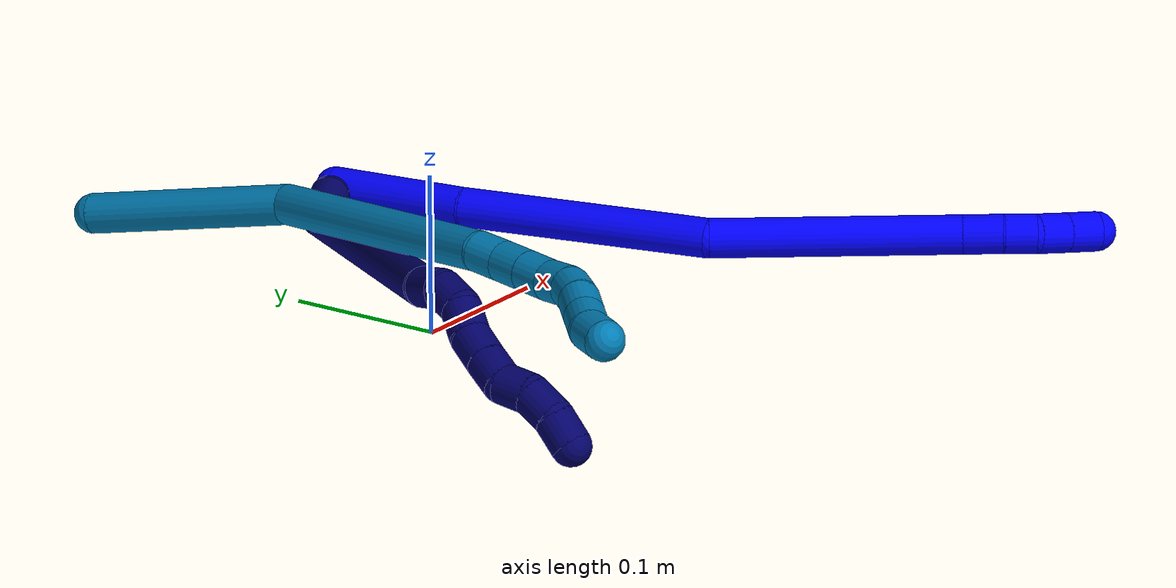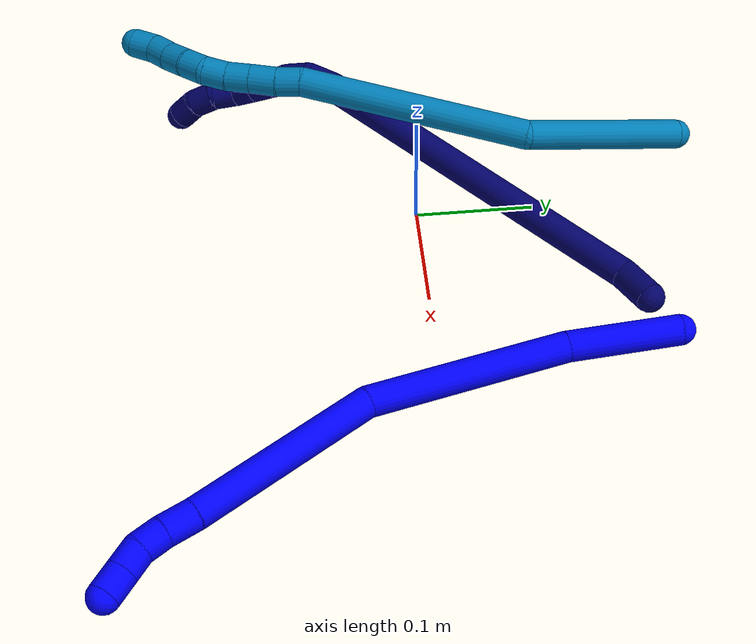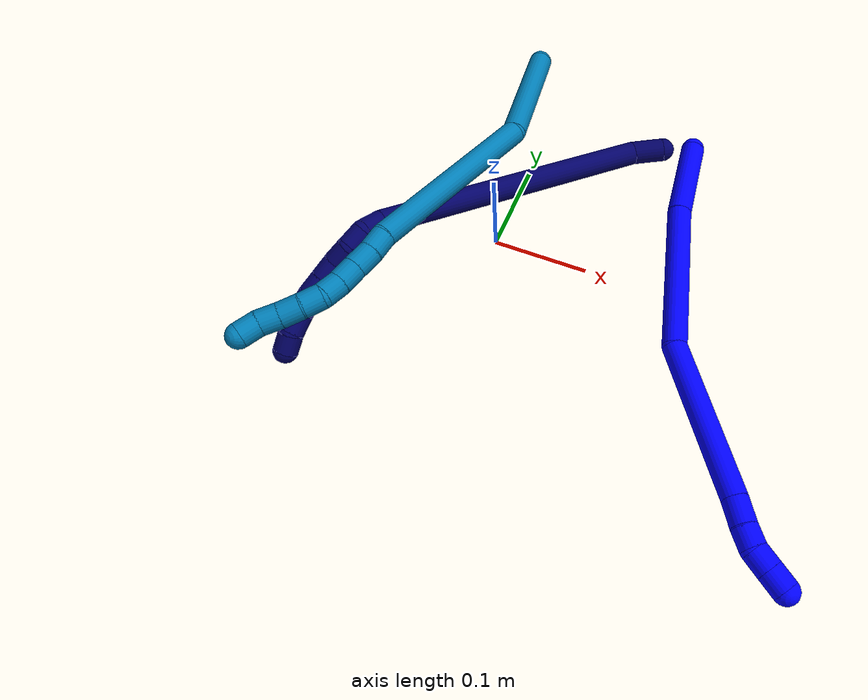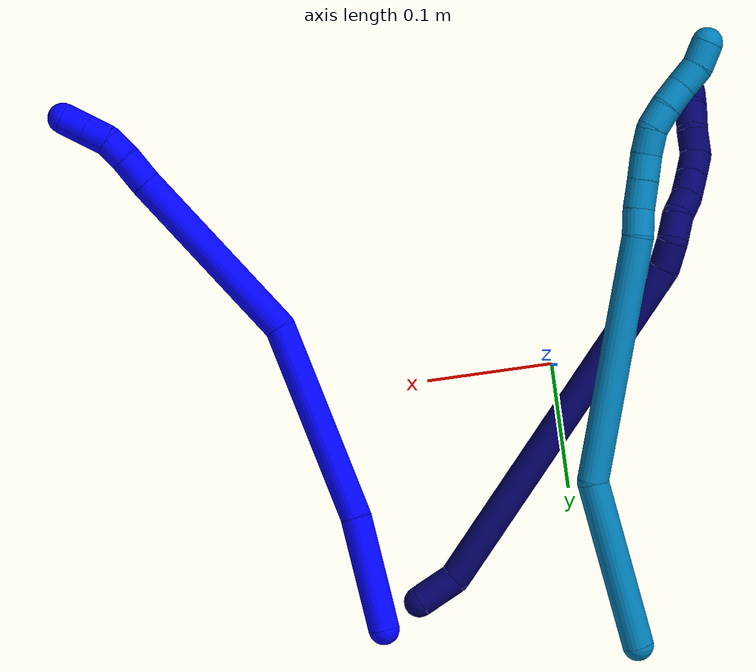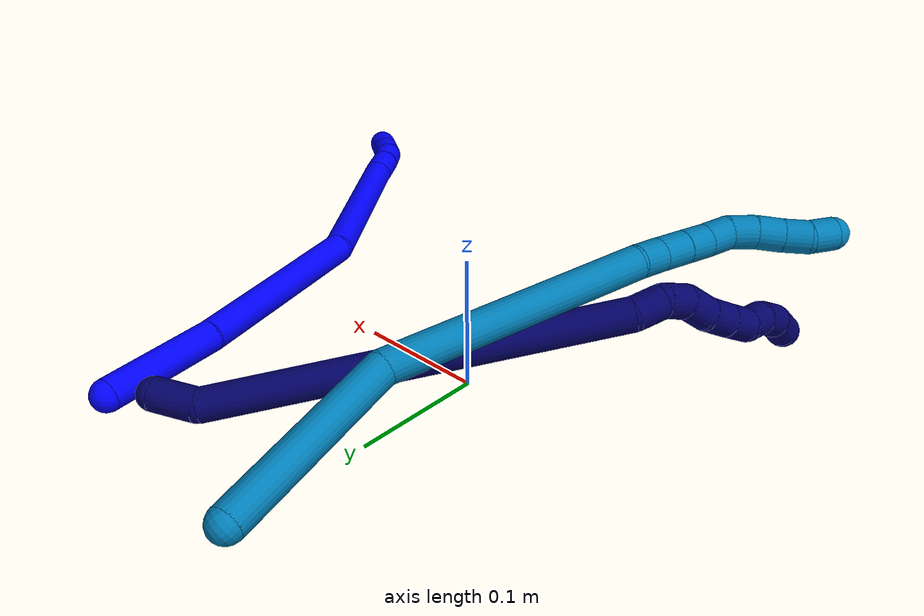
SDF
<sdf version="1.7">
 <world name="default">
  <model name="1">
   <static>0</static>
   <link name="1">
    <collision name="collision-cylinder-e_1_1_4">
     <pose>0.013761 -0.033315 0.029308 0.849297 0.300728 0.136798</pose>
     <geometry><cylinder><radius>0.0125</radius><length>0.092913</length></cylinder></geometry>
     <surface>
      <friction><ode><mu>1.16</mu><mu2>1.16</mu2><slip1>0</slip1><slip2>0</slip2></ode></friction>
      <contact><ode><kp>1e+06</kp><kd>1</kd><max_vel>0</max_vel><min_depth>0.001</min_depth></ode></contact>
     </surface>
    </collision>
    <visual name="visual-cylinder-e_1_1_4">
     <pose>0.013761 -0.033315 0.029308 0.849297 0.300728 0.136798</pose>
     <geometry><cylinder><radius>0.0125</radius><length>0.092913</length></cylinder></geometry>
     <material><ambient>0 0 1 1</ambient></material>
    </visual>
    <collision name="collision-cylinder-e_2_4_5">
     <pose>0.058813 -0.117606 0.114356 0.740785 0.392737 0.154191</pose>
     <geometry><cylinder><radius>0.0125</radius><length>0.163519</length></cylinder></geometry>
     <surface>
      <friction><ode><mu>1.16</mu><mu2>1.16</mu2><slip1>0</slip1><slip2>0</slip2></ode></friction>
      <contact><ode><kp>1e+06</kp><kd>1</kd><max_vel>0</max_vel><min_depth>0.001</min_depth></ode></contact>
     </surface>
    </collision>
    <visual name="visual-cylinder-e_2_4_5">
     <pose>0.058813 -0.117606 0.114356 0.740785 0.392737 0.154191</pose>
     <geometry><cylinder><radius>0.0125</radius><length>0.163519</length></cylinder></geometry>
     <material><ambient>0 0 1 1</ambient></material>
    </visual>
    <collision name="collision-cylinder-e_3_5_6">
     <pose>0.131842 -0.192563 0.23232 0.367858 0.559235 0.106733</pose>
     <geometry><cylinder><radius>0.0125</radius><length>0.157341</length></cylinder></geometry>
     <surface>
      <friction><ode><mu>1.16</mu><mu2>1.16</mu2><slip1>0</slip1><slip2>0</slip2></ode></friction>
      <contact><ode><kp>1e+06</kp><kd>1</kd><max_vel>0</max_vel><min_depth>0.001</min_depth></ode></contact>
     </surface>
    </collision>
    <visual name="visual-cylinder-e_3_5_6">
     <pose>0.131842 -0.192563 0.23232 0.367858 0.559235 0.106733</pose>
     <geometry><cylinder><radius>0.0125</radius><length>0.157341</length></cylinder></geometry>
     <material><ambient>0 0 1 1</ambient></material>
    </visual>
    <collision name="collision-cylinder-e_4_6_7">
     <pose>0.179793 -0.221125 0.304692 0.424069 0.509073 0.111901</pose>
     <geometry><cylinder><radius>0.0125</radius><length>0.025499</length></cylinder></geometry>
     <surface>
      <friction><ode><mu>1.16</mu><mu2>1.16</mu2><slip1>0</slip1><slip2>0</slip2></ode></friction>
      <contact><ode><kp>1e+06</kp><kd>1</kd><max_vel>0</max_vel><min_depth>0.001</min_depth></ode></contact>
     </surface>
    </collision>
    <visual name="visual-cylinder-e_4_6_7">
     <pose>0.179793 -0.221125 0.304692 0.424069 0.509073 0.111901</pose>
     <geometry><cylinder><radius>0.0125</radius><length>0.025499</length></cylinder></geometry>
     <material><ambient>0 0 1 1</ambient></material>
    </visual>
    <collision name="collision-cylinder-e_5_7_8">
     <pose>0.191664 -0.228524 0.322684 0.344812 0.596242 0.106914</pose>
     <geometry><cylinder><radius>0.0125</radius><length>0.020148</length></cylinder></geometry>
     <surface>
      <friction><ode><mu>1.16</mu><mu2>1.16</mu2><slip1>0</slip1><slip2>0</slip2></ode></friction>
      <contact><ode><kp>1e+06</kp><kd>1</kd><max_vel>0</max_vel><min_depth>0.001</min_depth></ode></contact>
     </surface>
    </collision>
    <visual name="visual-cylinder-e_5_7_8">
     <pose>0.191664 -0.228524 0.322684 0.344812 0.596242 0.106914</pose>
     <geometry><cylinder><radius>0.0125</radius><length>0.020148</length></cylinder></geometry>
     <material><ambient>0 0 1 1</ambient></material>
    </visual>
    <collision name="collision-cylinder-e_6_8_9">
     <pose>0.204213 -0.231158 0.337788 -0.025344 0.759342 -0.010113</pose>
     <geometry><cylinder><radius>0.0125</radius><length>0.020023</length></cylinder></geometry>
     <surface>
      <friction><ode><mu>1.16</mu><mu2>1.16</mu2><slip1>0</slip1><slip2>0</slip2></ode></friction>
      <contact><ode><kp>1e+06</kp><kd>1</kd><max_vel>0</max_vel><min_depth>0.001</min_depth></ode></contact>
     </surface>
    </collision>
    <visual name="visual-cylinder-e_6_8_9">
     <pose>0.204213 -0.231158 0.337788 -0.025344 0.759342 -0.010113</pose>
     <geometry><cylinder><radius>0.0125</radius><length>0.020023</length></cylinder></geometry>
     <material><ambient>0 0 1 1</ambient></material>
    </visual>
    <collision name="collision-cylinder-e_7_9_2">
     <pose>0.218136 -0.230765 0.352542 -0.027844 0.753199 -0.011012</pose>
     <geometry><cylinder><radius>0.0125</radius><length>0.020556</length></cylinder></geometry>
     <surface>
      <friction><ode><mu>1.16</mu><mu2>1.16</mu2><slip1>0</slip1><slip2>0</slip2></ode></friction>
      <contact><ode><kp>1e+06</kp><kd>1</kd><max_vel>0</max_vel><min_depth>0.001</min_depth></ode></contact>
     </surface>
    </collision>
    <visual name="visual-cylinder-e_7_9_2">
     <pose>0.218136 -0.230765 0.352542 -0.027844 0.753199 -0.011012</pose>
     <geometry><cylinder><radius>0.0125</radius><length>0.020556</length></cylinder></geometry>
     <material><ambient>0 0 1 1</ambient></material>
    </visual>
    <collision name="collision-sphere-2">
     <pose>0.225166 -0.230556 0.360037 0 -0 0</pose>
     <geometry><sphere><radius>0.0125</radius></sphere></geometry>
     <surface>
      <friction><ode><mu>1.16</mu><mu2>1.16</mu2><slip1>0</slip1><slip2>0</slip2></ode></friction>
      <contact><ode><kp>1e+06</kp><kd>1</kd><max_vel>0</max_vel><min_depth>0.001</min_depth></ode></contact>
     </surface>
    </collision>
    <visual name="visual-sphere-2">
     <pose>0.225166 -0.230556 0.360037 0 -0 0</pose>
     <geometry><sphere><radius>0.0125</radius></sphere></geometry>
     <material><ambient>0 0 1 1</ambient></material>
    </visual>
    <collision name="collision-sphere-9">
     <pose>0.211106 -0.230974 0.345047 0 -0 0</pose>
     <geometry><sphere><radius>0.0125</radius></sphere></geometry>
     <surface>
      <friction><ode><mu>1.16</mu><mu2>1.16</mu2><slip1>0</slip1><slip2>0</slip2></ode></friction>
      <contact><ode><kp>1e+06</kp><kd>1</kd><max_vel>0</max_vel><min_depth>0.001</min_depth></ode></contact>
     </surface>
    </collision>
    <visual name="visual-sphere-9">
     <pose>0.211106 -0.230974 0.345047 0 -0 0</pose>
     <geometry><sphere><radius>0.0125</radius></sphere></geometry>
     <material><ambient>0 0 1 1</ambient></material>
    </visual>
    <collision name="collision-sphere-4">
     <pose>0.027522 -0.06663 0.058616 0 -0 0</pose>
     <geometry><sphere><radius>0.0125</radius></sphere></geometry>
     <surface>
      <friction><ode><mu>1.16</mu><mu2>1.16</mu2><slip1>0</slip1><slip2>0</slip2></ode></friction>
      <contact><ode><kp>1e+06</kp><kd>1</kd><max_vel>0</max_vel><min_depth>0.001</min_depth></ode></contact>
     </surface>
    </collision>
    <visual name="visual-sphere-4">
     <pose>0.027522 -0.06663 0.058616 0 -0 0</pose>
     <geometry><sphere><radius>0.0125</radius></sphere></geometry>
     <material><ambient>0 0 1 1</ambient></material>
    </visual>
    <collision name="collision-sphere-1">
     <geometry><sphere><radius>0.0125</radius></sphere></geometry>
     <surface>
      <friction><ode><mu>1.16</mu><mu2>1.16</mu2><slip1>0</slip1><slip2>0</slip2></ode></friction>
      <contact><ode><kp>1e+06</kp><kd>1</kd><max_vel>0</max_vel><min_depth>0.001</min_depth></ode></contact>
     </surface>
    </collision>
    <visual name="visual-sphere-1">
     <geometry><sphere><radius>0.0125</radius></sphere></geometry>
     <material><ambient>0 0 1 1</ambient></material>
    </visual>
    <collision name="collision-sphere-8">
     <pose>0.197321 -0.231342 0.330529 0 -0 0</pose>
     <geometry><sphere><radius>0.0125</radius></sphere></geometry>
     <surface>
      <friction><ode><mu>1.16</mu><mu2>1.16</mu2><slip1>0</slip1><slip2>0</slip2></ode></friction>
      <contact><ode><kp>1e+06</kp><kd>1</kd><max_vel>0</max_vel><min_depth>0.001</min_depth></ode></contact>
     </surface>
    </collision>
    <visual name="visual-sphere-8">
     <pose>0.197321 -0.231342 0.330529 0 -0 0</pose>
     <geometry><sphere><radius>0.0125</radius></sphere></geometry>
     <material><ambient>0 0 1 1</ambient></material>
    </visual>
    <collision name="collision-sphere-5">
     <pose>0.090104 -0.168582 0.170096 0 -0 0</pose>
     <geometry><sphere><radius>0.0125</radius></sphere></geometry>
     <surface>
      <friction><ode><mu>1.16</mu><mu2>1.16</mu2><slip1>0</slip1><slip2>0</slip2></ode></friction>
      <contact><ode><kp>1e+06</kp><kd>1</kd><max_vel>0</max_vel><min_depth>0.001</min_depth></ode></contact>
     </surface>
    </collision>
    <visual name="visual-sphere-5">
     <pose>0.090104 -0.168582 0.170096 0 -0 0</pose>
     <geometry><sphere><radius>0.0125</radius></sphere></geometry>
     <material><ambient>0 0 1 1</ambient></material>
    </visual>
    <collision name="collision-sphere-6">
     <pose>0.173579 -0.216544 0.294545 0 -0 0</pose>
     <geometry><sphere><radius>0.0125</radius></sphere></geometry>
     <surface>
      <friction><ode><mu>1.16</mu><mu2>1.16</mu2><slip1>0</slip1><slip2>0</slip2></ode></friction>
      <contact><ode><kp>1e+06</kp><kd>1</kd><max_vel>0</max_vel><min_depth>0.001</min_depth></ode></contact>
     </surface>
    </collision>
    <visual name="visual-sphere-6">
     <pose>0.173579 -0.216544 0.294545 0 -0 0</pose>
     <geometry><sphere><radius>0.0125</radius></sphere></geometry>
     <material><ambient>0 0 1 1</ambient></material>
    </visual>
    <collision name="collision-sphere-7">
     <pose>0.186007 -0.225706 0.314839 0 -0 0</pose>
     <geometry><sphere><radius>0.0125</radius></sphere></geometry>
     <surface>
      <friction><ode><mu>1.16</mu><mu2>1.16</mu2><slip1>0</slip1><slip2>0</slip2></ode></friction>
      <contact><ode><kp>1e+06</kp><kd>1</kd><max_vel>0</max_vel><min_depth>0.001</min_depth></ode></contact>
     </surface>
    </collision>
    <visual name="visual-sphere-7">
     <pose>0.186007 -0.225706 0.314839 0 -0 0</pose>
     <geometry><sphere><radius>0.0125</radius></sphere></geometry>
     <material><ambient>0 0 1 1</ambient></material>
    </visual>
    <inertial>
     <pose>0.097318 -0.144479 0.172515 0 -0 0</pose>
     <mass>0.5</mass>
     <inertia><ixx>0.000799</ixx><ixy>0</ixy><ixz>0</ixz><iyy>0.000727</iyy><iyz>0</iyz><izz>7e-05</izz></inertia>
    </inertial>
   </link>
   <pose>0.162126 0.191928 0.011498 0.31651 0.874543 -0.392799</pose>
  </model>
  <model name="7">
   <static>0</static>
   <link name="7">
    <collision name="collision-cylinder-e_1_1_4">
     <pose>-0.011937 -0.002878 0.011577 0.243646 -0.785714 -0.101382</pose>
     <geometry><cylinder><radius>0.0125</radius><length>0.033753</length></cylinder></geometry>
     <surface>
      <friction><ode><mu>1.16</mu><mu2>1.16</mu2><slip1>0</slip1><slip2>0</slip2></ode></friction>
      <contact><ode><kp>1e+06</kp><kd>1</kd><max_vel>0</max_vel><min_depth>0.001</min_depth></ode></contact>
     </surface>
    </collision>
    <visual name="visual-cylinder-e_1_1_4">
     <pose>-0.011937 -0.002878 0.011577 0.243646 -0.785714 -0.101382</pose>
     <geometry><cylinder><radius>0.0125</radius><length>0.033753</length></cylinder></geometry>
     <material><ambient>0.003922 0 0.403922 1</ambient></material>
    </visual>
    <collision name="collision-cylinder-e_2_4_5">
     <pose>-0.071174 -0.026886 0.164464 0.148428 -0.31969 -0.023973</pose>
     <geometry><cylinder><radius>0.0125</radius><length>0.301013</length></cylinder></geometry>
     <surface>
      <friction><ode><mu>1.16</mu><mu2>1.16</mu2><slip1>0</slip1><slip2>0</slip2></ode></friction>
      <contact><ode><kp>1e+06</kp><kd>1</kd><max_vel>0</max_vel><min_depth>0.001</min_depth></ode></contact>
     </surface>
    </collision>
    <visual name="visual-cylinder-e_2_4_5">
     <pose>-0.071174 -0.026886 0.164464 0.148428 -0.31969 -0.023973</pose>
     <geometry><cylinder><radius>0.0125</radius><length>0.301013</length></cylinder></geometry>
     <material><ambient>0.003922 0 0.403922 1</ambient></material>
    </visual>
    <collision name="collision-cylinder-e_3_5_6">
     <pose>-0.118739 -0.050345 0.316806 0.208127 -0.023448 -0.002449</pose>
     <geometry><cylinder><radius>0.0125</radius><length>0.022557</length></cylinder></geometry>
     <surface>
      <friction><ode><mu>1.16</mu><mu2>1.16</mu2><slip1>0</slip1><slip2>0</slip2></ode></friction>
      <contact><ode><kp>1e+06</kp><kd>1</kd><max_vel>0</max_vel><min_depth>0.001</min_depth></ode></contact>
     </surface>
    </collision>
    <visual name="visual-cylinder-e_3_5_6">
     <pose>-0.118739 -0.050345 0.316806 0.208127 -0.023448 -0.002449</pose>
     <geometry><cylinder><radius>0.0125</radius><length>0.022557</length></cylinder></geometry>
     <material><ambient>0.003922 0 0.403922 1</ambient></material>
    </visual>
    <collision name="collision-cylinder-e_4_6_7">
     <pose>-0.120327 -0.059426 0.335685 0.710415 -0.127228 -0.047249</pose>
     <geometry><cylinder><radius>0.0125</radius><length>0.020871</length></cylinder></geometry>
     <surface>
      <friction><ode><mu>1.16</mu><mu2>1.16</mu2><slip1>0</slip1><slip2>0</slip2></ode></friction>
      <contact><ode><kp>1e+06</kp><kd>1</kd><max_vel>0</max_vel><min_depth>0.001</min_depth></ode></contact>
     </surface>
    </collision>
    <visual name="visual-cylinder-e_4_6_7">
     <pose>-0.120327 -0.059426 0.335685 0.710415 -0.127228 -0.047249</pose>
     <geometry><cylinder><radius>0.0125</radius><length>0.020871</length></cylinder></geometry>
     <material><ambient>0.003922 0 0.403922 1</ambient></material>
    </visual>
    <collision name="collision-cylinder-e_5_7_8">
     <pose>-0.12594 -0.074209 0.348348 1.03075 -0.429419 -0.245803</pose>
     <geometry><cylinder><radius>0.0125</radius><length>0.020602</length></cylinder></geometry>
     <surface>
      <friction><ode><mu>1.16</mu><mu2>1.16</mu2><slip1>0</slip1><slip2>0</slip2></ode></friction>
      <contact><ode><kp>1e+06</kp><kd>1</kd><max_vel>0</max_vel><min_depth>0.001</min_depth></ode></contact>
     </surface>
    </collision>
    <visual name="visual-cylinder-e_5_7_8">
     <pose>-0.12594 -0.074209 0.348348 1.03075 -0.429419 -0.245803</pose>
     <geometry><cylinder><radius>0.0125</radius><length>0.020602</length></cylinder></geometry>
     <material><ambient>0.003922 0 0.403922 1</ambient></material>
    </visual>
    <collision name="collision-cylinder-e_6_8_9">
     <pose>-0.132495 -0.090034 0.359337 0.900772 -0.224141 -0.108728</pose>
     <geometry><cylinder><radius>0.0125</radius><length>0.020392</length></cylinder></geometry>
     <surface>
      <friction><ode><mu>1.16</mu><mu2>1.16</mu2><slip1>0</slip1><slip2>0</slip2></ode></friction>
      <contact><ode><kp>1e+06</kp><kd>1</kd><max_vel>0</max_vel><min_depth>0.001</min_depth></ode></contact>
     </surface>
    </collision>
    <visual name="visual-cylinder-e_6_8_9">
     <pose>-0.132495 -0.090034 0.359337 0.900772 -0.224141 -0.108728</pose>
     <geometry><cylinder><radius>0.0125</radius><length>0.020392</length></cylinder></geometry>
     <material><ambient>0.003922 0 0.403922 1</ambient></material>
    </visual>
    <collision name="collision-cylinder-e_7_9_10">
     <pose>-0.136703 -0.105387 0.371799 0.877098 -0.194947 -0.091658</pose>
     <geometry><cylinder><radius>0.0125</radius><length>0.020049</length></cylinder></geometry>
     <surface>
      <friction><ode><mu>1.16</mu><mu2>1.16</mu2><slip1>0</slip1><slip2>0</slip2></ode></friction>
      <contact><ode><kp>1e+06</kp><kd>1</kd><max_vel>0</max_vel><min_depth>0.001</min_depth></ode></contact>
     </surface>
    </collision>
    <visual name="visual-cylinder-e_7_9_10">
     <pose>-0.136703 -0.105387 0.371799 0.877098 -0.194947 -0.091658</pose>
     <geometry><cylinder><radius>0.0125</radius><length>0.020049</length></cylinder></geometry>
     <material><ambient>0.003922 0 0.403922 1</ambient></material>
    </visual>
    <collision name="collision-cylinder-e_8_10_11">
     <pose>-0.136214 -0.11914 0.385625 0.687546 0.244268 0.087826</pose>
     <geometry><cylinder><radius>0.0125</radius><length>0.020107</length></cylinder></geometry>
     <surface>
      <friction><ode><mu>1.16</mu><mu2>1.16</mu2><slip1>0</slip1><slip2>0</slip2></ode></friction>
      <contact><ode><kp>1e+06</kp><kd>1</kd><max_vel>0</max_vel><min_depth>0.001</min_depth></ode></contact>
     </surface>
    </collision>
    <visual name="visual-cylinder-e_8_10_11">
     <pose>-0.136214 -0.11914 0.385625 0.687546 0.244268 0.087826</pose>
     <geometry><cylinder><radius>0.0125</radius><length>0.020107</length></cylinder></geometry>
     <material><ambient>0.003922 0 0.403922 1</ambient></material>
    </visual>
    <collision name="collision-cylinder-e_9_11_12">
     <pose>-0.133784 -0.13389 0.398941 0.977108 -0.000168 -8.9e-05</pose>
     <geometry><cylinder><radius>0.0125</radius><length>0.020653</length></cylinder></geometry>
     <surface>
      <friction><ode><mu>1.16</mu><mu2>1.16</mu2><slip1>0</slip1><slip2>0</slip2></ode></friction>
      <contact><ode><kp>1e+06</kp><kd>1</kd><max_vel>0</max_vel><min_depth>0.001</min_depth></ode></contact>
     </surface>
    </collision>
    <visual name="visual-cylinder-e_9_11_12">
     <pose>-0.133784 -0.13389 0.398941 0.977108 -0.000168 -8.9e-05</pose>
     <geometry><cylinder><radius>0.0125</radius><length>0.020653</length></cylinder></geometry>
     <material><ambient>0.003922 0 0.403922 1</ambient></material>
    </visual>
    <collision name="collision-cylinder-e_10_12_2">
     <pose>-0.134808 -0.151944 0.407692 1.26721 -0.102328 -0.075205</pose>
     <geometry><cylinder><radius>0.0125</radius><length>0.020003</length></cylinder></geometry>
     <surface>
      <friction><ode><mu>1.16</mu><mu2>1.16</mu2><slip1>0</slip1><slip2>0</slip2></ode></friction>
      <contact><ode><kp>1e+06</kp><kd>1</kd><max_vel>0</max_vel><min_depth>0.001</min_depth></ode></contact>
     </surface>
    </collision>
    <visual name="visual-cylinder-e_10_12_2">
     <pose>-0.134808 -0.151944 0.407692 1.26721 -0.102328 -0.075205</pose>
     <geometry><cylinder><radius>0.0125</radius><length>0.020003</length></cylinder></geometry>
     <material><ambient>0.003922 0 0.403922 1</ambient></material>
    </visual>
    <collision name="collision-sphere-2">
     <pose>-0.135829 -0.161438 0.410666 0 -0 0</pose>
     <geometry><sphere><radius>0.0125</radius></sphere></geometry>
     <surface>
      <friction><ode><mu>1.16</mu><mu2>1.16</mu2><slip1>0</slip1><slip2>0</slip2></ode></friction>
      <contact><ode><kp>1e+06</kp><kd>1</kd><max_vel>0</max_vel><min_depth>0.001</min_depth></ode></contact>
     </surface>
    </collision>
    <visual name="visual-sphere-2">
     <pose>-0.135829 -0.161438 0.410666 0 -0 0</pose>
     <geometry><sphere><radius>0.0125</radius></sphere></geometry>
     <material><ambient>0.003922 0 0.403922 1</ambient></material>
    </visual>
    <collision name="collision-sphere-12">
     <pose>-0.133786 -0.14245 0.404718 0 -0 0</pose>
     <geometry><sphere><radius>0.0125</radius></sphere></geometry>
     <surface>
      <friction><ode><mu>1.16</mu><mu2>1.16</mu2><slip1>0</slip1><slip2>0</slip2></ode></friction>
      <contact><ode><kp>1e+06</kp><kd>1</kd><max_vel>0</max_vel><min_depth>0.001</min_depth></ode></contact>
     </surface>
    </collision>
    <visual name="visual-sphere-12">
     <pose>-0.133786 -0.14245 0.404718 0 -0 0</pose>
     <geometry><sphere><radius>0.0125</radius></sphere></geometry>
     <material><ambient>0.003922 0 0.403922 1</ambient></material>
    </visual>
    <collision name="collision-sphere-11">
     <pose>-0.133783 -0.125331 0.393164 0 -0 0</pose>
     <geometry><sphere><radius>0.0125</radius></sphere></geometry>
     <surface>
      <friction><ode><mu>1.16</mu><mu2>1.16</mu2><slip1>0</slip1><slip2>0</slip2></ode></friction>
      <contact><ode><kp>1e+06</kp><kd>1</kd><max_vel>0</max_vel><min_depth>0.001</min_depth></ode></contact>
     </surface>
    </collision>
    <visual name="visual-sphere-11">
     <pose>-0.133783 -0.125331 0.393164 0 -0 0</pose>
     <geometry><sphere><radius>0.0125</radius></sphere></geometry>
     <material><ambient>0.003922 0 0.403922 1</ambient></material>
    </visual>
    <collision name="collision-sphere-10">
     <pose>-0.138645 -0.112949 0.378087 0 -0 0</pose>
     <geometry><sphere><radius>0.0125</radius></sphere></geometry>
     <surface>
      <friction><ode><mu>1.16</mu><mu2>1.16</mu2><slip1>0</slip1><slip2>0</slip2></ode></friction>
      <contact><ode><kp>1e+06</kp><kd>1</kd><max_vel>0</max_vel><min_depth>0.001</min_depth></ode></contact>
     </surface>
    </collision>
    <visual name="visual-sphere-10">
     <pose>-0.138645 -0.112949 0.378087 0 -0 0</pose>
     <geometry><sphere><radius>0.0125</radius></sphere></geometry>
     <material><ambient>0.003922 0 0.403922 1</ambient></material>
    </visual>
    <collision name="collision-sphere-9">
     <pose>-0.134762 -0.097826 0.365511 0 -0 0</pose>
     <geometry><sphere><radius>0.0125</radius></sphere></geometry>
     <surface>
      <friction><ode><mu>1.16</mu><mu2>1.16</mu2><slip1>0</slip1><slip2>0</slip2></ode></friction>
      <contact><ode><kp>1e+06</kp><kd>1</kd><max_vel>0</max_vel><min_depth>0.001</min_depth></ode></contact>
     </surface>
    </collision>
    <visual name="visual-sphere-9">
     <pose>-0.134762 -0.097826 0.365511 0 -0 0</pose>
     <geometry><sphere><radius>0.0125</radius></sphere></geometry>
     <material><ambient>0.003922 0 0.403922 1</ambient></material>
    </visual>
    <collision name="collision-sphere-4">
     <pose>-0.023875 -0.005756 0.023155 0 -0 0</pose>
     <geometry><sphere><radius>0.0125</radius></sphere></geometry>
     <surface>
      <friction><ode><mu>1.16</mu><mu2>1.16</mu2><slip1>0</slip1><slip2>0</slip2></ode></friction>
      <contact><ode><kp>1e+06</kp><kd>1</kd><max_vel>0</max_vel><min_depth>0.001</min_depth></ode></contact>
     </surface>
    </collision>
    <visual name="visual-sphere-4">
     <pose>-0.023875 -0.005756 0.023155 0 -0 0</pose>
     <geometry><sphere><radius>0.0125</radius></sphere></geometry>
     <material><ambient>0.003922 0 0.403922 1</ambient></material>
    </visual>
    <collision name="collision-sphere-1">
     <geometry><sphere><radius>0.0125</radius></sphere></geometry>
     <surface>
      <friction><ode><mu>1.16</mu><mu2>1.16</mu2><slip1>0</slip1><slip2>0</slip2></ode></friction>
      <contact><ode><kp>1e+06</kp><kd>1</kd><max_vel>0</max_vel><min_depth>0.001</min_depth></ode></contact>
     </surface>
    </collision>
    <visual name="visual-sphere-1">
     <geometry><sphere><radius>0.0125</radius></sphere></geometry>
     <material><ambient>0.003922 0 0.403922 1</ambient></material>
    </visual>
    <collision name="collision-sphere-8">
     <pose>-0.130229 -0.082242 0.353164 0 -0 0</pose>
     <geometry><sphere><radius>0.0125</radius></sphere></geometry>
     <surface>
      <friction><ode><mu>1.16</mu><mu2>1.16</mu2><slip1>0</slip1><slip2>0</slip2></ode></friction>
      <contact><ode><kp>1e+06</kp><kd>1</kd><max_vel>0</max_vel><min_depth>0.001</min_depth></ode></contact>
     </surface>
    </collision>
    <visual name="visual-sphere-8">
     <pose>-0.130229 -0.082242 0.353164 0 -0 0</pose>
     <geometry><sphere><radius>0.0125</radius></sphere></geometry>
     <material><ambient>0.003922 0 0.403922 1</ambient></material>
    </visual>
    <collision name="collision-sphere-5">
     <pose>-0.118474 -0.048015 0.305774 0 -0 0</pose>
     <geometry><sphere><radius>0.0125</radius></sphere></geometry>
     <surface>
      <friction><ode><mu>1.16</mu><mu2>1.16</mu2><slip1>0</slip1><slip2>0</slip2></ode></friction>
      <contact><ode><kp>1e+06</kp><kd>1</kd><max_vel>0</max_vel><min_depth>0.001</min_depth></ode></contact>
     </surface>
    </collision>
    <visual name="visual-sphere-5">
     <pose>-0.118474 -0.048015 0.305774 0 -0 0</pose>
     <geometry><sphere><radius>0.0125</radius></sphere></geometry>
     <material><ambient>0.003922 0 0.403922 1</ambient></material>
    </visual>
    <collision name="collision-sphere-6">
     <pose>-0.119003 -0.052675 0.327838 0 -0 0</pose>
     <geometry><sphere><radius>0.0125</radius></sphere></geometry>
     <surface>
      <friction><ode><mu>1.16</mu><mu2>1.16</mu2><slip1>0</slip1><slip2>0</slip2></ode></friction>
      <contact><ode><kp>1e+06</kp><kd>1</kd><max_vel>0</max_vel><min_depth>0.001</min_depth></ode></contact>
     </surface>
    </collision>
    <visual name="visual-sphere-6">
     <pose>-0.119003 -0.052675 0.327838 0 -0 0</pose>
     <geometry><sphere><radius>0.0125</radius></sphere></geometry>
     <material><ambient>0.003922 0 0.403922 1</ambient></material>
    </visual>
    <collision name="collision-sphere-7">
     <pose>-0.121652 -0.066176 0.343532 0 -0 0</pose>
     <geometry><sphere><radius>0.0125</radius></sphere></geometry>
     <surface>
      <friction><ode><mu>1.16</mu><mu2>1.16</mu2><slip1>0</slip1><slip2>0</slip2></ode></friction>
      <contact><ode><kp>1e+06</kp><kd>1</kd><max_vel>0</max_vel><min_depth>0.001</min_depth></ode></contact>
     </surface>
    </collision>
    <visual name="visual-sphere-7">
     <pose>-0.121652 -0.066176 0.343532 0 -0 0</pose>
     <geometry><sphere><radius>0.0125</radius></sphere></geometry>
     <material><ambient>0.003922 0 0.403922 1</ambient></material>
    </visual>
    <inertial>
     <pose>-0.086506 -0.048488 0.220311 0 -0 0</pose>
     <mass>0.5</mass>
     <inertia>
      <ixx>0.00212</ixx>
      <ixy>0</ixy>
      <ixz>0</ixz>
      <iyy>0.002208</iyy>
      <iyz>0</iyz>
      <izz>0.001084</izz>
     </inertia>
    </inertial>
   </link>
   <pose>0.131059 0.173374 0.017883 1.10922 -0.31764 -0.314801</pose>
  </model>
  <model name="9">
   <static>0</static>
   <link name="9">
    <collision name="collision-cylinder-e_1_1_4">
     <pose>0.026581 -0.03083 0.056062 0.502785 0.393764 0.102366</pose>
     <geometry><cylinder><radius>0.0125</radius><length>0.138563</length></cylinder></geometry>
     <surface>
      <friction><ode><mu>1.16</mu><mu2>1.16</mu2><slip1>0</slip1><slip2>0</slip2></ode></friction>
      <contact><ode><kp>1e+06</kp><kd>1</kd><max_vel>0</max_vel><min_depth>0.001</min_depth></ode></contact>
     </surface>
    </collision>
    <visual name="visual-cylinder-e_1_1_4">
     <pose>0.026581 -0.03083 0.056062 0.502785 0.393764 0.102366</pose>
     <geometry><cylinder><radius>0.0125</radius><length>0.138563</length></cylinder></geometry>
     <material><ambient>0 0.490196 0.709804 1</ambient></material>
    </visual>
    <collision name="collision-cylinder-e_2_4_5">
     <pose>0.047465 -0.105408 0.199589 0.463793 -0.05819 -0.013745</pose>
     <geometry><cylinder><radius>0.0125</radius><length>0.195926</length></cylinder></geometry>
     <surface>
      <friction><ode><mu>1.16</mu><mu2>1.16</mu2><slip1>0</slip1><slip2>0</slip2></ode></friction>
      <contact><ode><kp>1e+06</kp><kd>1</kd><max_vel>0</max_vel><min_depth>0.001</min_depth></ode></contact>
     </surface>
    </collision>
    <visual name="visual-cylinder-e_2_4_5">
     <pose>0.047465 -0.105408 0.199589 0.463793 -0.05819 -0.013745</pose>
     <geometry><cylinder><radius>0.0125</radius><length>0.195926</length></cylinder></geometry>
     <material><ambient>0 0.490196 0.709804 1</ambient></material>
    </visual>
    <collision name="collision-cylinder-e_3_5_6">
     <pose>0.042078 -0.155724 0.295362 0.668971 0.029307 0.010186</pose>
     <geometry><cylinder><radius>0.0125</radius><length>0.021188</length></cylinder></geometry>
     <surface>
      <friction><ode><mu>1.16</mu><mu2>1.16</mu2><slip1>0</slip1><slip2>0</slip2></ode></friction>
      <contact><ode><kp>1e+06</kp><kd>1</kd><max_vel>0</max_vel><min_depth>0.001</min_depth></ode></contact>
     </surface>
    </collision>
    <visual name="visual-cylinder-e_3_5_6">
     <pose>0.042078 -0.155724 0.295362 0.668971 0.029307 0.010186</pose>
     <geometry><cylinder><radius>0.0125</radius><length>0.021188</length></cylinder></geometry>
     <material><ambient>0 0.490196 0.709804 1</ambient></material>
    </visual>
    <collision name="collision-cylinder-e_4_6_7">
     <pose>0.041676 -0.168553 0.313038 0.589147 -0.063095 -0.019149</pose>
     <geometry><cylinder><radius>0.0125</radius><length>0.022583</length></cylinder></geometry>
     <surface>
      <friction><ode><mu>1.16</mu><mu2>1.16</mu2><slip1>0</slip1><slip2>0</slip2></ode></friction>
      <contact><ode><kp>1e+06</kp><kd>1</kd><max_vel>0</max_vel><min_depth>0.001</min_depth></ode></contact>
     </surface>
    </collision>
    <visual name="visual-cylinder-e_4_6_7">
     <pose>0.041676 -0.168553 0.313038 0.589147 -0.063095 -0.019149</pose>
     <geometry><cylinder><radius>0.0125</radius><length>0.022583</length></cylinder></geometry>
     <material><ambient>0 0.490196 0.709804 1</ambient></material>
    </visual>
    <collision name="collision-cylinder-e_5_7_8">
     <pose>0.040461 -0.180713 0.330891 0.60751 -0.048633 -0.015247</pose>
     <geometry><cylinder><radius>0.0125</radius><length>0.020691</length></cylinder></geometry>
     <surface>
      <friction><ode><mu>1.16</mu><mu2>1.16</mu2><slip1>0</slip1><slip2>0</slip2></ode></friction>
      <contact><ode><kp>1e+06</kp><kd>1</kd><max_vel>0</max_vel><min_depth>0.001</min_depth></ode></contact>
     </surface>
    </collision>
    <visual name="visual-cylinder-e_5_7_8">
     <pose>0.040461 -0.180713 0.330891 0.60751 -0.048633 -0.015247</pose>
     <geometry><cylinder><radius>0.0125</radius><length>0.020691</length></cylinder></geometry>
     <material><ambient>0 0.490196 0.709804 1</ambient></material>
    </visual>
    <collision name="collision-cylinder-e_6_8_9">
     <pose>0.03891 -0.191137 0.348345 0.467273 -0.103988 -0.024768</pose>
     <geometry><cylinder><radius>0.0125</radius><length>0.020202</length></cylinder></geometry>
     <surface>
      <friction><ode><mu>1.16</mu><mu2>1.16</mu2><slip1>0</slip1><slip2>0</slip2></ode></friction>
      <contact><ode><kp>1e+06</kp><kd>1</kd><max_vel>0</max_vel><min_depth>0.001</min_depth></ode></contact>
     </surface>
    </collision>
    <visual name="visual-cylinder-e_6_8_9">
     <pose>0.03891 -0.191137 0.348345 0.467273 -0.103988 -0.024768</pose>
     <geometry><cylinder><radius>0.0125</radius><length>0.020202</length></cylinder></geometry>
     <material><ambient>0 0.490196 0.709804 1</ambient></material>
    </visual>
    <collision name="collision-cylinder-e_7_9_10">
     <pose>0.033312 -0.200197 0.365146 0.524854 -0.465804 -0.127266</pose>
     <geometry><cylinder><radius>0.0125</radius><length>0.020257</length></cylinder></geometry>
     <surface>
      <friction><ode><mu>1.16</mu><mu2>1.16</mu2><slip1>0</slip1><slip2>0</slip2></ode></friction>
      <contact><ode><kp>1e+06</kp><kd>1</kd><max_vel>0</max_vel><min_depth>0.001</min_depth></ode></contact>
     </surface>
    </collision>
    <visual name="visual-cylinder-e_7_9_10">
     <pose>0.033312 -0.200197 0.365146 0.524854 -0.465804 -0.127266</pose>
     <geometry><cylinder><radius>0.0125</radius><length>0.020257</length></cylinder></geometry>
     <material><ambient>0 0.490196 0.709804 1</ambient></material>
    </visual>
    <collision name="collision-cylinder-e_8_10_11">
     <pose>0.022981 -0.209576 0.379923 0.608999 -0.599053 -0.1935</pose>
     <geometry><cylinder><radius>0.0125</radius><length>0.020508</length></cylinder></geometry>
     <surface>
      <friction><ode><mu>1.16</mu><mu2>1.16</mu2><slip1>0</slip1><slip2>0</slip2></ode></friction>
      <contact><ode><kp>1e+06</kp><kd>1</kd><max_vel>0</max_vel><min_depth>0.001</min_depth></ode></contact>
     </surface>
    </collision>
    <visual name="visual-cylinder-e_8_10_11">
     <pose>0.022981 -0.209576 0.379923 0.608999 -0.599053 -0.1935</pose>
     <geometry><cylinder><radius>0.0125</radius><length>0.020508</length></cylinder></geometry>
     <material><ambient>0 0.490196 0.709804 1</ambient></material>
    </visual>
    <collision name="collision-cylinder-e_9_11_12">
     <pose>0.011497 -0.21843 0.394093 0.506752 -0.604074 -0.161008</pose>
     <geometry><cylinder><radius>0.0125</radius><length>0.020078</length></cylinder></geometry>
     <surface>
      <friction><ode><mu>1.16</mu><mu2>1.16</mu2><slip1>0</slip1><slip2>0</slip2></ode></friction>
      <contact><ode><kp>1e+06</kp><kd>1</kd><max_vel>0</max_vel><min_depth>0.001</min_depth></ode></contact>
     </surface>
    </collision>
    <visual name="visual-cylinder-e_9_11_12">
     <pose>0.011497 -0.21843 0.394093 0.506752 -0.604074 -0.161008</pose>
     <geometry><cylinder><radius>0.0125</radius><length>0.020078</length></cylinder></geometry>
     <material><ambient>0 0.490196 0.709804 1</ambient></material>
    </visual>
    <collision name="collision-cylinder-e_10_12_2">
     <pose>0.002869 -0.227238 0.409592 0.525404 -0.296897 -0.080389</pose>
     <geometry><cylinder><radius>0.0125</radius><length>0.020005</length></cylinder></geometry>
     <surface>
      <friction><ode><mu>1.16</mu><mu2>1.16</mu2><slip1>0</slip1><slip2>0</slip2></ode></friction>
      <contact><ode><kp>1e+06</kp><kd>1</kd><max_vel>0</max_vel><min_depth>0.001</min_depth></ode></contact>
     </surface>
    </collision>
    <visual name="visual-cylinder-e_10_12_2">
     <pose>0.002869 -0.227238 0.409592 0.525404 -0.296897 -0.080389</pose>
     <geometry><cylinder><radius>0.0125</radius><length>0.020005</length></cylinder></geometry>
     <material><ambient>0 0.490196 0.709804 1</ambient></material>
    </visual>
    <collision name="collision-sphere-2">
     <pose>-5.7e-05 -0.232035 0.417867 0 -0 0</pose>
     <geometry><sphere><radius>0.0125</radius></sphere></geometry>
     <surface>
      <friction><ode><mu>1.16</mu><mu2>1.16</mu2><slip1>0</slip1><slip2>0</slip2></ode></friction>
      <contact><ode><kp>1e+06</kp><kd>1</kd><max_vel>0</max_vel><min_depth>0.001</min_depth></ode></contact>
     </surface>
    </collision>
    <visual name="visual-sphere-2">
     <pose>-5.7e-05 -0.232035 0.417867 0 -0 0</pose>
     <geometry><sphere><radius>0.0125</radius></sphere></geometry>
     <material><ambient>0 0.490196 0.709804 1</ambient></material>
    </visual>
    <collision name="collision-sphere-12">
     <pose>0.005795 -0.22244 0.401317 0 -0 0</pose>
     <geometry><sphere><radius>0.0125</radius></sphere></geometry>
     <surface>
      <friction><ode><mu>1.16</mu><mu2>1.16</mu2><slip1>0</slip1><slip2>0</slip2></ode></friction>
      <contact><ode><kp>1e+06</kp><kd>1</kd><max_vel>0</max_vel><min_depth>0.001</min_depth></ode></contact>
     </surface>
    </collision>
    <visual name="visual-sphere-12">
     <pose>0.005795 -0.22244 0.401317 0 -0 0</pose>
     <geometry><sphere><radius>0.0125</radius></sphere></geometry>
     <material><ambient>0 0.490196 0.709804 1</ambient></material>
    </visual>
    <collision name="collision-sphere-11">
     <pose>0.017199 -0.21442 0.386869 0 -0 0</pose>
     <geometry><sphere><radius>0.0125</radius></sphere></geometry>
     <surface>
      <friction><ode><mu>1.16</mu><mu2>1.16</mu2><slip1>0</slip1><slip2>0</slip2></ode></friction>
      <contact><ode><kp>1e+06</kp><kd>1</kd><max_vel>0</max_vel><min_depth>0.001</min_depth></ode></contact>
     </surface>
    </collision>
    <visual name="visual-sphere-11">
     <pose>0.017199 -0.21442 0.386869 0 -0 0</pose>
     <geometry><sphere><radius>0.0125</radius></sphere></geometry>
     <material><ambient>0 0.490196 0.709804 1</ambient></material>
    </visual>
    <collision name="collision-sphere-10">
     <pose>0.028763 -0.204731 0.372977 0 -0 0</pose>
     <geometry><sphere><radius>0.0125</radius></sphere></geometry>
     <surface>
      <friction><ode><mu>1.16</mu><mu2>1.16</mu2><slip1>0</slip1><slip2>0</slip2></ode></friction>
      <contact><ode><kp>1e+06</kp><kd>1</kd><max_vel>0</max_vel><min_depth>0.001</min_depth></ode></contact>
     </surface>
    </collision>
    <visual name="visual-sphere-10">
     <pose>0.028763 -0.204731 0.372977 0 -0 0</pose>
     <geometry><sphere><radius>0.0125</radius></sphere></geometry>
     <material><ambient>0 0.490196 0.709804 1</ambient></material>
    </visual>
    <collision name="collision-sphere-9">
     <pose>0.037862 -0.195662 0.357314 0 -0 0</pose>
     <geometry><sphere><radius>0.0125</radius></sphere></geometry>
     <surface>
      <friction><ode><mu>1.16</mu><mu2>1.16</mu2><slip1>0</slip1><slip2>0</slip2></ode></friction>
      <contact><ode><kp>1e+06</kp><kd>1</kd><max_vel>0</max_vel><min_depth>0.001</min_depth></ode></contact>
     </surface>
    </collision>
    <visual name="visual-sphere-9">
     <pose>0.037862 -0.195662 0.357314 0 -0 0</pose>
     <geometry><sphere><radius>0.0125</radius></sphere></geometry>
     <material><ambient>0 0.490196 0.709804 1</ambient></material>
    </visual>
    <collision name="collision-sphere-4">
     <pose>0.053162 -0.061659 0.112123 0 -0 0</pose>
     <geometry><sphere><radius>0.0125</radius></sphere></geometry>
     <surface>
      <friction><ode><mu>1.16</mu><mu2>1.16</mu2><slip1>0</slip1><slip2>0</slip2></ode></friction>
      <contact><ode><kp>1e+06</kp><kd>1</kd><max_vel>0</max_vel><min_depth>0.001</min_depth></ode></contact>
     </surface>
    </collision>
    <visual name="visual-sphere-4">
     <pose>0.053162 -0.061659 0.112123 0 -0 0</pose>
     <geometry><sphere><radius>0.0125</radius></sphere></geometry>
     <material><ambient>0 0.490196 0.709804 1</ambient></material>
    </visual>
    <collision name="collision-sphere-1">
     <geometry><sphere><radius>0.0125</radius></sphere></geometry>
     <surface>
      <friction><ode><mu>1.16</mu><mu2>1.16</mu2><slip1>0</slip1><slip2>0</slip2></ode></friction>
      <contact><ode><kp>1e+06</kp><kd>1</kd><max_vel>0</max_vel><min_depth>0.001</min_depth></ode></contact>
     </surface>
    </collision>
    <visual name="visual-sphere-1">
     <geometry><sphere><radius>0.0125</radius></sphere></geometry>
     <material><ambient>0 0.490196 0.709804 1</ambient></material>
    </visual>
    <collision name="collision-sphere-8">
     <pose>0.039959 -0.186611 0.339376 0 -0 0</pose>
     <geometry><sphere><radius>0.0125</radius></sphere></geometry>
     <surface>
      <friction><ode><mu>1.16</mu><mu2>1.16</mu2><slip1>0</slip1><slip2>0</slip2></ode></friction>
      <contact><ode><kp>1e+06</kp><kd>1</kd><max_vel>0</max_vel><min_depth>0.001</min_depth></ode></contact>
     </surface>
    </collision>
    <visual name="visual-sphere-8">
     <pose>0.039959 -0.186611 0.339376 0 -0 0</pose>
     <geometry><sphere><radius>0.0125</radius></sphere></geometry>
     <material><ambient>0 0.490196 0.709804 1</ambient></material>
    </visual>
    <collision name="collision-sphere-5">
     <pose>0.041767 -0.149157 0.287055 0 -0 0</pose>
     <geometry><sphere><radius>0.0125</radius></sphere></geometry>
     <surface>
      <friction><ode><mu>1.16</mu><mu2>1.16</mu2><slip1>0</slip1><slip2>0</slip2></ode></friction>
      <contact><ode><kp>1e+06</kp><kd>1</kd><max_vel>0</max_vel><min_depth>0.001</min_depth></ode></contact>
     </surface>
    </collision>
    <visual name="visual-sphere-5">
     <pose>0.041767 -0.149157 0.287055 0 -0 0</pose>
     <geometry><sphere><radius>0.0125</radius></sphere></geometry>
     <material><ambient>0 0.490196 0.709804 1</ambient></material>
    </visual>
    <collision name="collision-sphere-6">
     <pose>0.042388 -0.162291 0.303669 0 -0 0</pose>
     <geometry><sphere><radius>0.0125</radius></sphere></geometry>
     <surface>
      <friction><ode><mu>1.16</mu><mu2>1.16</mu2><slip1>0</slip1><slip2>0</slip2></ode></friction>
      <contact><ode><kp>1e+06</kp><kd>1</kd><max_vel>0</max_vel><min_depth>0.001</min_depth></ode></contact>
     </surface>
    </collision>
    <visual name="visual-sphere-6">
     <pose>0.042388 -0.162291 0.303669 0 -0 0</pose>
     <geometry><sphere><radius>0.0125</radius></sphere></geometry>
     <material><ambient>0 0.490196 0.709804 1</ambient></material>
    </visual>
    <collision name="collision-sphere-7">
     <pose>0.040964 -0.174815 0.322407 0 -0 0</pose>
     <geometry><sphere><radius>0.0125</radius></sphere></geometry>
     <surface>
      <friction><ode><mu>1.16</mu><mu2>1.16</mu2><slip1>0</slip1><slip2>0</slip2></ode></friction>
      <contact><ode><kp>1e+06</kp><kd>1</kd><max_vel>0</max_vel><min_depth>0.001</min_depth></ode></contact>
     </surface>
    </collision>
    <visual name="visual-sphere-7">
     <pose>0.040964 -0.174815 0.322407 0 -0 0</pose>
     <geometry><sphere><radius>0.0125</radius></sphere></geometry>
     <material><ambient>0 0.490196 0.709804 1</ambient></material>
    </visual>
    <inertial>
     <pose>0.035746 -0.11383 0.210757 0 -0 0</pose>
     <mass>0.5</mass>
     <inertia>
      <ixx>0.000865</ixx>
      <ixy>0</ixy>
      <ixz>0</ixz>
      <iyy>0.000774</iyy>
      <iyz>0</iyz>
      <izz>0.000376</izz>
     </inertia>
    </inertial>
   </link>
   <pose>-0.035797 0.229537 0.04152 0.965818 -0.266677 -0.217967</pose>
  </model>
 </world>
</sdf>
